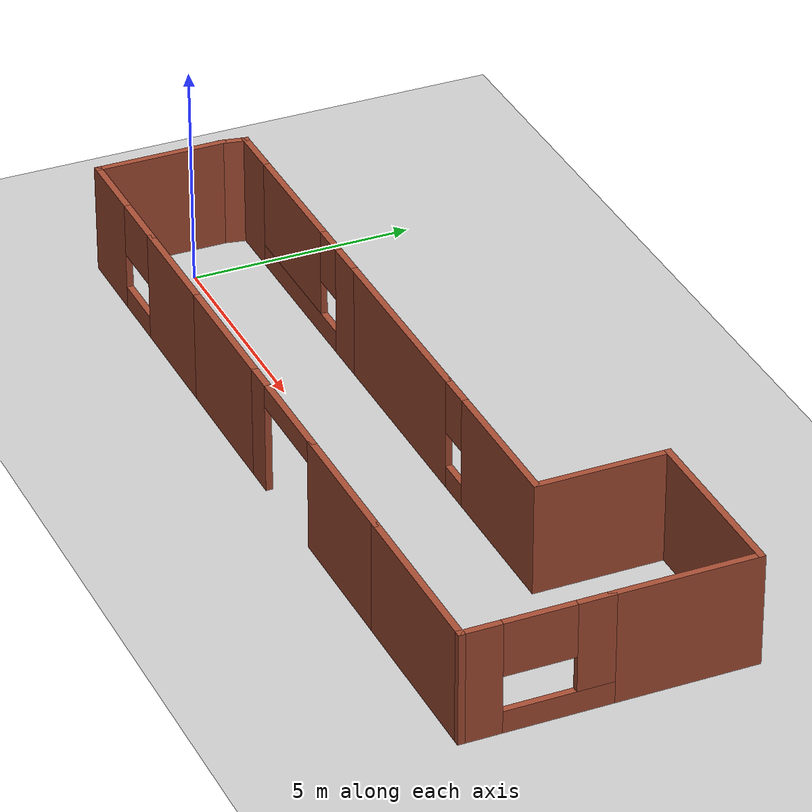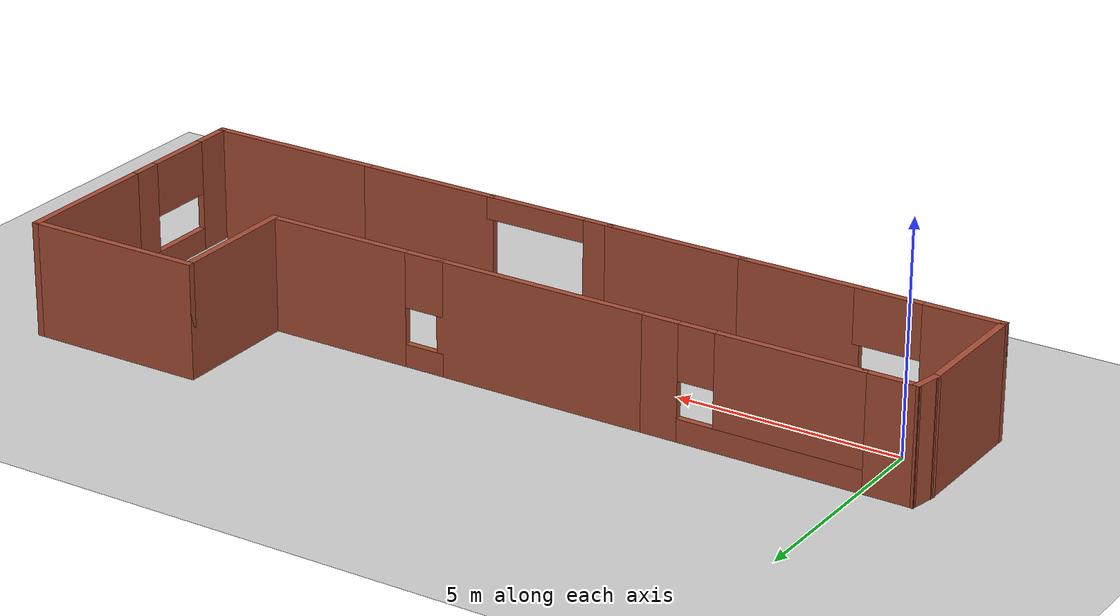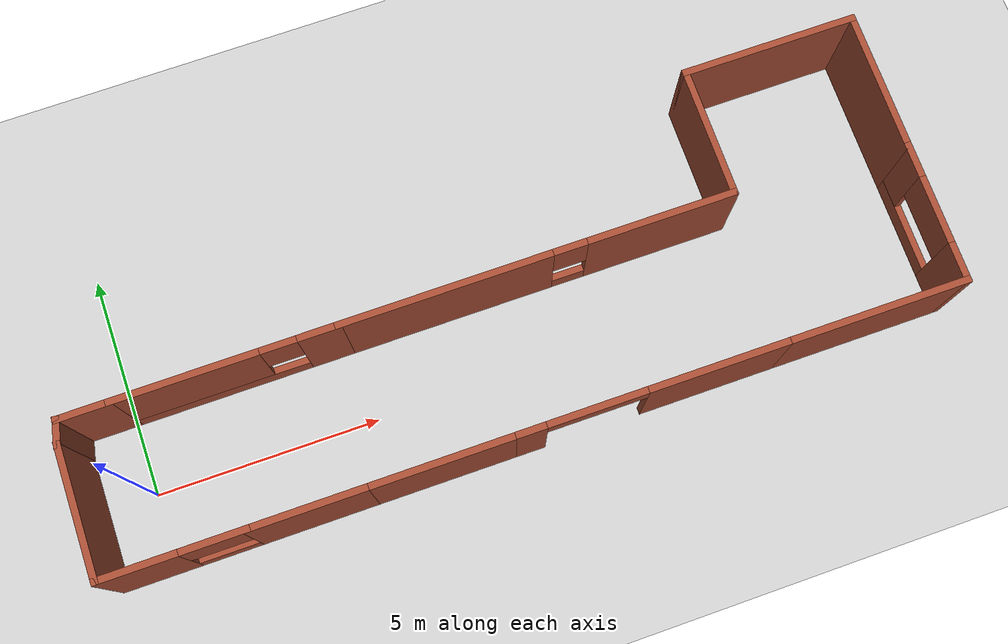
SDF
<sdf version="1.7">
 <world name="default">
  <light name="sun" type="directional">
   <pose>0 0 10 0 -0 0</pose>
   <diffuse>0.8 0.8 0.8 1</diffuse>
   <specular>0.2 0.2 0.2 1</specular>
   <attenuation>
    <range>1000</range>
    <constant>0.9</constant>
    <linear>0.01</linear>
    <quadratic>0.001</quadratic>
   </attenuation>
   <direction>-0.5 0.1 -0.9</direction>
   <spot><inner_angle>0</inner_angle><outer_angle>0</outer_angle><falloff>0</falloff></spot>
  </light>
  <model name="ground_plane">
   <static>1</static>
   <link name="link">
    <collision name="collision">
     <geometry><plane><normal>0 0 1</normal><size>100 100</size></plane></geometry>
     <surface>
      <contact><collide_bitmask>65535</collide_bitmask></contact>
      <friction><ode><mu>100</mu><mu2>50</mu2></ode></friction>
     </surface>
    </collision>
    <visual name="visual">
     <cast_shadows>0</cast_shadows>
     <geometry><plane><normal>0 0 1</normal><size>100 100</size></plane></geometry>
     <material>
      <script><uri>file://media/materials/scripts/gazebo.material</uri><name>Gazebo/Grey</name></script>
     </material>
    </visual>
   </link>
  </model>
  <gravity>0 0 -9.8</gravity>
  <magnetic_field>6e-06 2.3e-05 -4.2e-05</magnetic_field>
  <atmosphere type="adiabatic"/>
  <physics type="ode">
   <max_step_size>0.001</max_step_size>
   <real_time_factor>1</real_time_factor>
   <real_time_update_rate>1000</real_time_update_rate>
  </physics>
  <scene><ambient>0.4 0.4 0.4 1</ambient><background>0.7 0.7 0.7 1</background><shadows>1</shadows></scene>
  <spherical_coordinates>
   <surface_model>EARTH_WGS84</surface_model>
   <latitude_deg>0</latitude_deg>
   <longitude_deg>0</longitude_deg>
   <elevation>0</elevation>
   <heading_deg>0</heading_deg>
  </spherical_coordinates>
  <model name="casa_teste">
   <pose>8.12911 1.42361 0 0 -0 -1.5708</pose>
   <link name="Wall_10">
    <collision name="Wall_10_Collision">
     <geometry><box><size>2.75 0.15 2.5</size></box></geometry>
     <pose>0 0 1.25 0 -0 0</pose>
    </collision>
    <visual name="Wall_10_Visual">
     <pose>0 0 1.25 0 -0 0</pose>
     <geometry><box><size>2.75 0.15 2.5</size></box></geometry>
     <material>
      <script><uri>file://media/materials/scripts/gazebo.material</uri><name>Gazebo/Bricks</name></script>
      <ambient>1 1 1 1</ambient>
     </material>
     <meta><layer>0</layer></meta>
    </visual>
    <pose>3.1 -4.89337 0 0 -0 1.5708</pose>
   </link>
   <link name="Wall_11">
    <collision name="Wall_11_Collision">
     <geometry><box><size>3.25 0.15 2.5</size></box></geometry>
     <pose>0 0 1.25 0 -0 0</pose>
    </collision>
    <visual name="Wall_11_Visual">
     <pose>0 0 1.25 0 -0 0</pose>
     <geometry><box><size>3.25 0.15 2.5</size></box></geometry>
     <material>
      <script><uri>file://media/materials/scripts/gazebo.material</uri><name>Gazebo/Bricks</name></script>
      <ambient>1 1 1 1</ambient>
     </material>
     <meta><layer>0</layer></meta>
    </visual>
    <pose>3.1 -2.04337 0 0 -0 1.5708</pose>
   </link>
   <link name="Wall_12">
    <pose>3.1 0.931626 0 0 -0 1.5708</pose>
    <visual name="Wall_12_Visual_0">
     <pose>-1.16674 0 1.25 0 -0 0</pose>
     <geometry><box><size>0.666519 0.15 2.5</size></box></geometry>
     <material>
      <script><uri>file://media/materials/scripts/gazebo.material</uri><name>Gazebo/Bricks</name></script>
      <ambient>1 1 1 1</ambient>
     </material>
     <meta><layer>0</layer></meta>
    </visual>
    <collision name="Wall_12_Collision_0">
     <geometry><box><size>0.666519 0.15 2.5</size></box></geometry>
     <pose>-1.16674 0 1.25 0 -0 0</pose>
    </collision>
    <visual name="Wall_12_Visual_1">
     <pose>0.33326 0 2.25 0 -0 0</pose>
     <geometry><box><size>2.33348 0.15 0.5</size></box></geometry>
     <material>
      <script><uri>file://media/materials/scripts/gazebo.material</uri><name>Gazebo/Bricks</name></script>
      <ambient>1 1 1 1</ambient>
     </material>
     <meta><layer>0</layer></meta>
    </visual>
    <collision name="Wall_12_Collision_1">
     <geometry><box><size>2.33348 0.15 0.5</size></box></geometry>
     <pose>0.33326 0 2.25 0 -0 0</pose>
    </collision>
   </link>
   <link name="Wall_17">
    <collision name="Wall_17_Collision">
     <geometry><box><size>3.25 0.15 2.5</size></box></geometry>
     <pose>0 0 1.25 0 -0 0</pose>
    </collision>
    <visual name="Wall_17_Visual">
     <pose>0 0 1.25 0 -0 0</pose>
     <geometry><box><size>3.25 0.15 2.5</size></box></geometry>
     <material>
      <script><uri>file://media/materials/scripts/gazebo.material</uri><name>Gazebo/Bricks</name></script>
      <ambient>1 1 1 1</ambient>
     </material>
     <meta><layer>0</layer></meta>
    </visual>
    <pose>3.1 3.90663 0 0 -0 1.5708</pose>
   </link>
   <link name="Wall_18">
    <collision name="Wall_18_Collision">
     <geometry><box><size>4 0.15 2.5</size></box></geometry>
     <pose>0 0 1.25 0 -0 0</pose>
    </collision>
    <visual name="Wall_18_Visual">
     <pose>0 0 1.25 0 -0 0</pose>
     <geometry><box><size>4 0.15 2.5</size></box></geometry>
     <material>
      <script><uri>file://media/materials/scripts/gazebo.material</uri><name>Gazebo/Bricks</name></script>
      <ambient>1 1 1 1</ambient>
     </material>
     <meta><layer>0</layer></meta>
    </visual>
    <pose>3.1 7.38163 0 0 -0 1.5708</pose>
   </link>
   <link name="Wall_19">
    <pose>1.55 9.30663 0 0 -0 3.14159</pose>
    <visual name="Wall_19_Visual_0">
     <pose>-1.16476 0 1.25 0 -0 0</pose>
     <geometry><box><size>0.920485 0.15 2.5</size></box></geometry>
     <material>
      <script><uri>file://media/materials/scripts/gazebo.material</uri><name>Gazebo/Bricks</name></script>
      <ambient>1 1 1 1</ambient>
     </material>
     <meta><layer>0</layer></meta>
    </visual>
    <collision name="Wall_19_Collision_0">
     <geometry><box><size>0.920485 0.15 2.5</size></box></geometry>
     <pose>-1.16476 0 1.25 0 -0 0</pose>
    </collision>
    <visual name="Wall_19_Visual_1">
     <pose>0.460242 0 0.25 0 -0 0</pose>
     <geometry><box><size>2.32951 0.15 0.5</size></box></geometry>
     <material>
      <script><uri>file://media/materials/scripts/gazebo.material</uri><name>Gazebo/Bricks</name></script>
      <ambient>1 1 1 1</ambient>
     </material>
     <meta><layer>0</layer></meta>
    </visual>
    <collision name="Wall_19_Collision_1">
     <geometry><box><size>2.32951 0.15 0.5</size></box></geometry>
     <pose>0.460242 0 0.25 0 -0 0</pose>
    </collision>
    <visual name="Wall_19_Visual_2">
     <pose>1.22434 0 1.5 0 -0 0</pose>
     <geometry><box><size>0.801315 0.15 2</size></box></geometry>
     <material>
      <script><uri>file://media/materials/scripts/gazebo.material</uri><name>Gazebo/Bricks</name></script>
      <ambient>1 1 1 1</ambient>
     </material>
     <meta><layer>0</layer></meta>
    </visual>
    <collision name="Wall_19_Collision_2">
     <geometry><box><size>0.801315 0.15 2</size></box></geometry>
     <pose>1.22434 0 1.5 0 -0 0</pose>
    </collision>
    <visual name="Wall_19_Visual_3">
     <pose>0.059585 0 1.9 0 -0 0</pose>
     <geometry><box><size>1.5282 0.15 1.2</size></box></geometry>
     <material>
      <script><uri>file://media/materials/scripts/gazebo.material</uri><name>Gazebo/Bricks</name></script>
      <ambient>1 1 1 1</ambient>
     </material>
     <meta><layer>0</layer></meta>
    </visual>
    <collision name="Wall_19_Collision_3">
     <geometry><box><size>1.5282 0.15 1.2</size></box></geometry>
     <pose>0.059585 0 1.9 0 -0 0</pose>
    </collision>
   </link>
   <link name="Wall_20">
    <collision name="Wall_20_Collision">
     <geometry><box><size>3.25 0.15 2.5</size></box></geometry>
     <pose>0 0 1.25 0 -0 0</pose>
    </collision>
    <visual name="Wall_20_Visual">
     <pose>0 0 1.25 0 -0 0</pose>
     <geometry><box><size>3.25 0.15 2.5</size></box></geometry>
     <material>
      <script><uri>file://media/materials/scripts/gazebo.material</uri><name>Gazebo/Bricks</name></script>
      <ambient>1 1 1 1</ambient>
     </material>
     <meta><layer>0</layer></meta>
    </visual>
    <pose>-1.55 9.30663 0 0 -0 3.14159</pose>
   </link>
   <link name="Wall_21">
    <collision name="Wall_21_Collision">
     <geometry><box><size>4 0.15 2.5</size></box></geometry>
     <pose>0 0 1.25 0 -0 0</pose>
    </collision>
    <visual name="Wall_21_Visual">
     <pose>0 0 1.25 0 -0 0</pose>
     <geometry><box><size>4 0.15 2.5</size></box></geometry>
     <material>
      <script><uri>file://media/materials/scripts/gazebo.material</uri><name>Gazebo/Bricks</name></script>
      <ambient>1 1 1 1</ambient>
     </material>
     <meta><layer>0</layer></meta>
    </visual>
    <pose>-3.1 7.38163 0 0 -0 -1.5708</pose>
   </link>
   <link name="Wall_22">
    <collision name="Wall_22_Collision">
     <geometry><box><size>3 0.15 2.5</size></box></geometry>
     <pose>0 0 1.25 0 -0 0</pose>
    </collision>
    <visual name="Wall_22_Visual">
     <pose>0 0 1.25 0 -0 0</pose>
     <geometry><box><size>3 0.15 2.5</size></box></geometry>
     <material>
      <script><uri>file://media/materials/scripts/gazebo.material</uri><name>Gazebo/Bricks</name></script>
      <ambient>1 1 1 1</ambient>
     </material>
     <meta><layer>0</layer></meta>
    </visual>
    <pose>-1.675 5.45663 0 0 -0 0</pose>
   </link>
   <link name="Wall_23">
    <pose>-0.25 3.40663 0 0 -0 -1.5708</pose>
    <visual name="Wall_23_Visual_0">
     <pose>-0.450207 0 1.25 0 -0 0</pose>
     <geometry><box><size>3.34958 0.15 2.5</size></box></geometry>
     <material>
      <script><uri>file://media/materials/scripts/gazebo.material</uri><name>Gazebo/Bricks</name></script>
      <ambient>1 1 1 1</ambient>
     </material>
     <meta><layer>0</layer></meta>
    </visual>
    <collision name="Wall_23_Collision_0">
     <geometry><box><size>3.34958 0.15 2.5</size></box></geometry>
     <pose>-0.450207 0 1.25 0 -0 0</pose>
    </collision>
    <visual name="Wall_23_Visual_1">
     <pose>1.67479 0 0.25 0 -0 0</pose>
     <geometry><box><size>0.900415 0.15 0.5</size></box></geometry>
     <material>
      <script><uri>file://media/materials/scripts/gazebo.material</uri><name>Gazebo/Bricks</name></script>
      <ambient>1 1 1 1</ambient>
     </material>
     <meta><layer>0</layer></meta>
    </visual>
    <collision name="Wall_23_Collision_1">
     <geometry><box><size>0.900415 0.15 0.5</size></box></geometry>
     <pose>1.67479 0 0.25 0 -0 0</pose>
    </collision>
    <visual name="Wall_23_Visual_2">
     <pose>1.67479 0 1.9 0 -0 0</pose>
     <geometry><box><size>0.900415 0.15 1.2</size></box></geometry>
     <material>
      <script><uri>file://media/materials/scripts/gazebo.material</uri><name>Gazebo/Bricks</name></script>
      <ambient>1 1 1 1</ambient>
     </material>
     <meta><layer>0</layer></meta>
    </visual>
    <collision name="Wall_23_Collision_2">
     <geometry><box><size>0.900415 0.15 1.2</size></box></geometry>
     <pose>1.67479 0 1.9 0 -0 0</pose>
    </collision>
   </link>
   <link name="Wall_24">
    <collision name="Wall_24_Collision">
     <geometry><box><size>4.75 0.15 2.5</size></box></geometry>
     <pose>0 0 1.25 0 -0 0</pose>
    </collision>
    <visual name="Wall_24_Visual">
     <pose>0 0 1.25 0 -0 0</pose>
     <geometry><box><size>4.75 0.15 2.5</size></box></geometry>
     <material>
      <script><uri>file://media/materials/scripts/gazebo.material</uri><name>Gazebo/Bricks</name></script>
      <ambient>1 1 1 1</ambient>
     </material>
     <meta><layer>0</layer></meta>
    </visual>
    <pose>-0.25 -0.943374 0 0 -0 -1.5708</pose>
   </link>
   <link name="Wall_25">
    <pose>-0.25 -5.66837 0 0 -0 -1.5708</pose>
    <visual name="Wall_25_Visual_0">
     <pose>-2.01967 0 1.25 0 -0 0</pose>
     <geometry><box><size>0.960656 0.15 2.5</size></box></geometry>
     <material>
      <script><uri>file://media/materials/scripts/gazebo.material</uri><name>Gazebo/Bricks</name></script>
      <ambient>1 1 1 1</ambient>
     </material>
     <meta><layer>0</layer></meta>
    </visual>
    <collision name="Wall_25_Collision_0">
     <geometry><box><size>0.960656 0.15 2.5</size></box></geometry>
     <pose>-2.01967 0 1.25 0 -0 0</pose>
    </collision>
    <visual name="Wall_25_Visual_1">
     <pose>0.480328 0 0.25 0 -0 0</pose>
     <geometry><box><size>4.03934 0.15 0.5</size></box></geometry>
     <material>
      <script><uri>file://media/materials/scripts/gazebo.material</uri><name>Gazebo/Bricks</name></script>
      <ambient>1 1 1 1</ambient>
     </material>
     <meta><layer>0</layer></meta>
    </visual>
    <collision name="Wall_25_Collision_1">
     <geometry><box><size>4.03934 0.15 0.5</size></box></geometry>
     <pose>0.480328 0 0.25 0 -0 0</pose>
    </collision>
    <visual name="Wall_25_Visual_2">
     <pose>0.880328 0 1.5 0 -0 0</pose>
     <geometry><box><size>3.23934 0.15 2</size></box></geometry>
     <material>
      <script><uri>file://media/materials/scripts/gazebo.material</uri><name>Gazebo/Bricks</name></script>
      <ambient>1 1 1 1</ambient>
     </material>
     <meta><layer>0</layer></meta>
    </visual>
    <collision name="Wall_25_Collision_2">
     <geometry><box><size>3.23934 0.15 2</size></box></geometry>
     <pose>0.880328 0 1.5 0 -0 0</pose>
    </collision>
    <visual name="Wall_25_Visual_3">
     <pose>-1.13934 0 1.9 0 -0 0</pose>
     <geometry><box><size>0.8 0.15 1.2</size></box></geometry>
     <material>
      <script><uri>file://media/materials/scripts/gazebo.material</uri><name>Gazebo/Bricks</name></script>
      <ambient>1 1 1 1</ambient>
     </material>
     <meta><layer>0</layer></meta>
    </visual>
    <collision name="Wall_25_Collision_3">
     <geometry><box><size>0.8 0.15 1.2</size></box></geometry>
     <pose>-1.13934 0 1.9 0 -0 0</pose>
    </collision>
   </link>
   <link name="Wall_26">
    <collision name="Wall_26_Collision">
     <geometry><box><size>1.25 0.15 2.5</size></box></geometry>
     <pose>0 0 1.25 0 -0 0</pose>
    </collision>
    <visual name="Wall_26_Visual">
     <pose>0 0 1.25 0 -0 0</pose>
     <geometry><box><size>1.25 0.15 2.5</size></box></geometry>
     <material>
      <script><uri>file://media/materials/scripts/gazebo.material</uri><name>Gazebo/Bricks</name></script>
      <ambient>1 1 1 1</ambient>
     </material>
     <meta><layer>0</layer></meta>
    </visual>
    <pose>-0.25 -8.64337 0 0 -0 -1.5708</pose>
   </link>
   <link name="Wall_27">
    <collision name="Wall_27_Collision">
     <geometry><box><size>0.659902 0.15 2.5</size></box></geometry>
     <pose>0 0 1.25 0 -0 0</pose>
    </collision>
    <visual name="Wall_27_Visual">
     <pose>0 0 1.25 0 -0 0</pose>
     <geometry><box><size>0.659902 0.15 2.5</size></box></geometry>
     <material>
      <script><uri>file://media/materials/scripts/gazebo.material</uri><name>Gazebo/Bricks</name></script>
      <ambient>1 1 1 1</ambient>
     </material>
     <meta><layer>0</layer></meta>
    </visual>
    <pose>0 -9.24337 0 0 -0 -0.197396</pose>
   </link>
   <link name="Wall_5">
    <collision name="Wall_5_Collision">
     <geometry><box><size>3 0.15 2.5</size></box></geometry>
     <pose>0 0 1.25 0 -0 0</pose>
    </collision>
    <visual name="Wall_5_Visual">
     <pose>0 0 1.25 0 -0 0</pose>
     <geometry><box><size>3 0.15 2.5</size></box></geometry>
     <material>
      <script><uri>file://media/materials/scripts/gazebo.material</uri><name>Gazebo/Bricks</name></script>
      <ambient>1 1 1 1</ambient>
     </material>
     <meta><layer>0</layer></meta>
    </visual>
    <pose>1.675 -9.29337 0 0 -0 0</pose>
   </link>
   <link name="Wall_9">
    <pose>3.1 -7.74337 0 0 -0 1.5708</pose>
    <visual name="Wall_9_Visual_0">
     <pose>-0.740362 0 1.25 0 -0 0</pose>
     <geometry><box><size>1.76928 0.15 2.5</size></box></geometry>
     <material>
      <script><uri>file://media/materials/scripts/gazebo.material</uri><name>Gazebo/Bricks</name></script>
      <ambient>1 1 1 1</ambient>
     </material>
     <meta><layer>0</layer></meta>
    </visual>
    <collision name="Wall_9_Collision_0">
     <geometry><box><size>1.76928 0.15 2.5</size></box></geometry>
     <pose>-0.740362 0 1.25 0 -0 0</pose>
    </collision>
    <visual name="Wall_9_Visual_1">
     <pose>0.884638 0 0.25 0 -0 0</pose>
     <geometry><box><size>1.48072 0.15 0.5</size></box></geometry>
     <material>
      <script><uri>file://media/materials/scripts/gazebo.material</uri><name>Gazebo/Bricks</name></script>
      <ambient>1 1 1 1</ambient>
     </material>
     <meta><layer>0</layer></meta>
    </visual>
    <collision name="Wall_9_Collision_1">
     <geometry><box><size>1.48072 0.15 0.5</size></box></geometry>
     <pose>0.884638 0 0.25 0 -0 0</pose>
    </collision>
    <visual name="Wall_9_Visual_2">
     <pose>0.884638 0 1.9 0 -0 0</pose>
     <geometry><box><size>1.48072 0.15 1.2</size></box></geometry>
     <material>
      <script><uri>file://media/materials/scripts/gazebo.material</uri><name>Gazebo/Bricks</name></script>
      <ambient>1 1 1 1</ambient>
     </material>
     <meta><layer>0</layer></meta>
    </visual>
    <collision name="Wall_9_Collision_2">
     <geometry><box><size>1.48072 0.15 1.2</size></box></geometry>
     <pose>0.884638 0 1.9 0 -0 0</pose>
    </collision>
   </link>
   <static>1</static>
  </model>
 </world>
</sdf>
